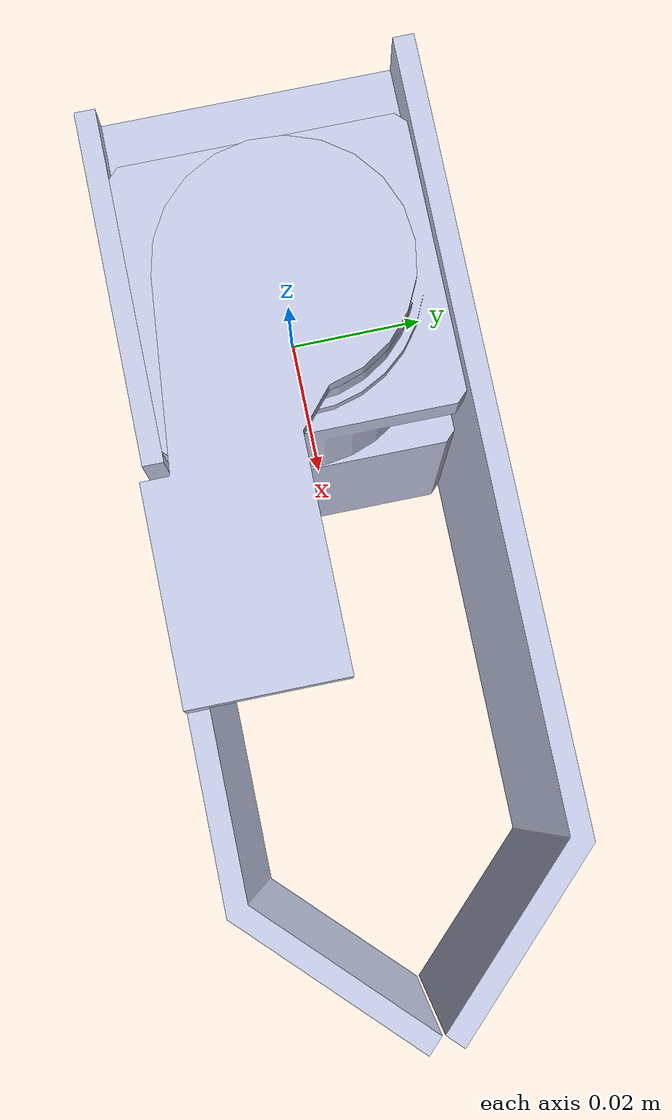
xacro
<?xml version="1.0"?>
<robot name="two_finger_gripper" xmlns:xacro="http://www.ros.org/wiki/xacro">

  <xacro:property name="finger_mechanical_reduction" value="304.0"/>
  <xacro:property name="finger_motor_torque_constant" value="3.0"/>
  <xacro:property name="joint_effort_limit" value="3.0"/>
  <xacro:property name="joint_velocity_limit" value="2.98452"/>
	<xacro:property name="finger_lower_limit" value="-1.57"/>
	<xacro:property name="finger_upper_limit" value="0.0"/>

  <xacro:include filename="$(find rb1_arm_description)/urdf/grippers/rb1_gripper_1.gazebo.xacro" />

  <link
    name="base_link_gripper">
    <inertial>
      <origin
        xyz="0.0 0.0 0.0"
        rpy="0 0 0" />
      <mass
        value="0.257" />
      <inertia
        ixx="0.000131356"
        ixy="0.0"
        ixz="0.000000083"
        iyy="0.000130775"
        iyz="0.0"
        izz="0.00006918" />
    </inertial>
    <visual>
      <origin
        xyz="0 0 0"
        rpy="0 0 0" />
      <geometry>
        <mesh
          filename="package://rb1_arm_description/meshes/grippers/v1/gripper_motor.dae" />
      </geometry>
      <material
        name="">
        <color
          rgba="0.79216 0.81961 0.93333 1" />
      </material>
    </visual>
    <collision>
      <origin
        xyz="0 0 0"
        rpy="0 0 0" />
      <geometry>
        <mesh
          filename="package://rb1_arm_description/meshes/grippers/v1/gripper_motor.dae" />
      </geometry>
      <contact_coefficients kd="1.0" kp="1000.0" mu="0"/>
    </collision>
  </link>

  <link
    name="link_finger1">
    <inertial>
      <origin
        xyz="0.0 0.0 0.0"
        rpy="0 0 0" />
      <mass
        value="0.1264" />
      <inertia
        ixx="0.000097351"
        ixy="0.000056737"
        ixz="0.000000245"
        iyy="0.000315015"
        iyz="0.000001224"
        izz="0.000319853" />
    </inertial>
    <visual>
      <origin
        xyz="0 0 0"
        rpy="0 0 0" />
      <geometry>
        <mesh
          filename="package://rb1_arm_description/meshes/grippers/v1/gripper_link1.dae" />
      </geometry>
      <material
        name="">
        <color
          rgba="0.792156862745098 0.819607843137255 0.933333333333333 1" />
      </material>
    </visual>
    <collision>
      <origin
        xyz="0 0 0"
        rpy="0 0 0" />
      <geometry>
        <mesh
          filename="package://rb1_arm_description/meshes/grippers/v1/gripper_link1.dae" />
      </geometry>
    </collision>
  </link>

  <joint
    name="jg1"
    type="fixed">
    <origin
      xyz="0.0 0.0 0"
      rpy="0.0 0.0 0.0" />
    <parent
      link="base_link_gripper" />
    <child
      link="link_finger1" />
  </joint>

  <link
    name="link_finger2">
    <inertial>
      <origin
        xyz="0.0 0.0 0.0"
        rpy="0 0 0" />
      <mass
        value="0.0633" />
      <inertia
        ixx="0.000062574"
        ixy="-0.00005905"
        ixz="0.000009803"
        iyy="0.000292473"
        iyz="-0.00000366"
        izz="0.00027232" />
    </inertial>
    <visual>
      <origin
        xyz="0 0 0"
        rpy="0 0 0" />
      <geometry>
        <mesh
          filename="package://rb1_arm_description/meshes/grippers/v1/gripper_link2.dae" />
      </geometry>
      <material
        name="">
        <color
          rgba="0.792156862745098 0.819607843137255 0.933333333333333 1" />
      </material>
    </visual>
    <collision>
      <origin
        xyz="0 0 0"
        rpy="0 0 0" />
      <geometry>
        <mesh
          filename="package://rb1_arm_description/meshes/grippers/v1/gripper_link1.dae" />
      </geometry>
    </collision>
  </link>
  <joint
    name="jg2"
    type="revolute">
    <origin
      xyz="0.0 0.0 0"
      rpy="0.0 0.0 0.0" />
    <parent
      link="base_link_gripper" />
    <child
      link="link_finger2" />
    <axis
      xyz="0 0 1" />
    <limit effort="${joint_effort_limit}" velocity="${joint_velocity_limit}" upper="${finger_upper_limit}" lower="${finger_lower_limit}"/>
    <dynamics damping="${joint_damping}" friction="${joint_friction}"/>
  </joint>

  <transmission name="jg2_trans">
	 <type>transmission_interface/SimpleTransmission</type>
     <joint name="jg2" />
     <actuator name="jg2_motor">
	    <hardwareInterface>EffortJointInterface</hardwareInterface>
        <mechanicalReduction>${finger_mechanical_reduction}</mechanicalReduction>
		<motorTorqueConstant>${finger_motor_torque_constant}</motorTorqueConstant>
	 </actuator>
  </transmission>

</robot>
